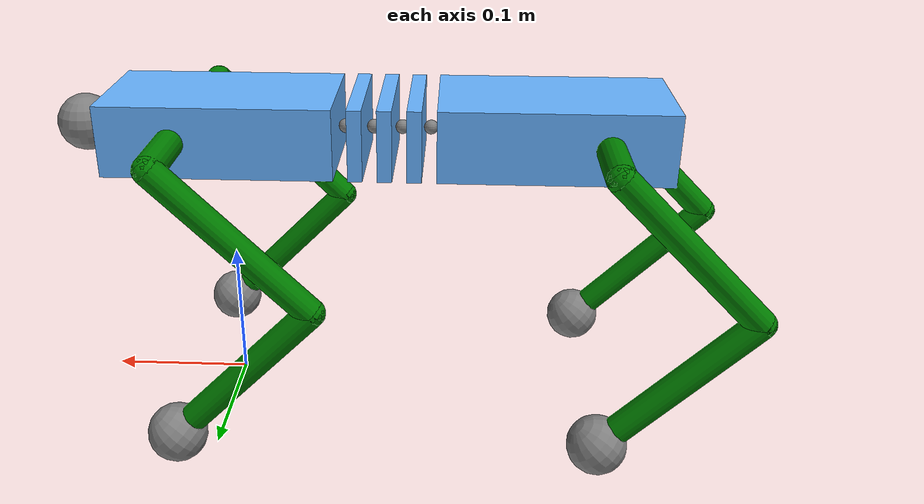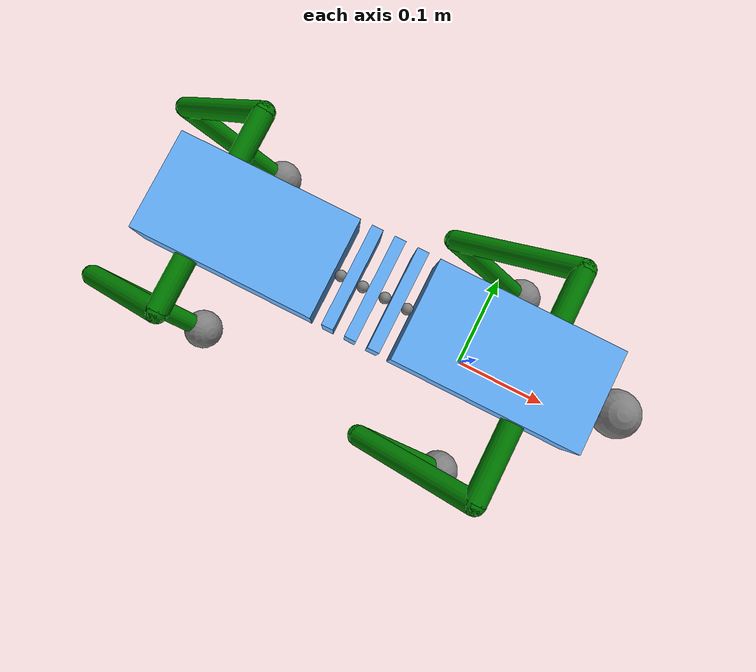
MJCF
<mujoco>

    <default>

        <default class="group1">
            <geom group="1" />
            <joint group="1" />

            <default class="limbs">

                <default class="Spine">
                    <geom mass="0.001" type="box" size="0.005 0.044 0.025" rgba="0.4 0.7 1.0 1" group="1"/>
                </default>

                <default class="SpineConnector">
                    <geom type="sphere" size="0.005" group="1"/>
                </default>

                <default class="Limb">
                    <geom mass="0.3" type="box" size="0.08 0.044 0.025" rgba="0.4 0.7 1.0 1" group="1"/>
                </default>

                <default class="AbductionGeom">
                    <geom type="capsule" mass="0.055" size="0.01" rgba="0.0 0.5 0.0 1" group="1"/>
                </default>

                <default class="UpLeg">
                    <geom type="capsule" mass="0.055" size="0.01" fromto="0 0 0 -0.14 0 0" rgba="0.0 0.5 0.0 1" group="1"/>
                </default>

                <default class="DownLeg">
                    <geom type="capsule" mass="0.055" size="0.01" fromto="0 0 0 0.14 0 0" rgba="0.0 0.5 0.0 1" group="1"/>
                </default>

                <default class="Foot">
                    <geom type="sphere" mass="0" size="0.02" rgba="1.0 1.0 0.1 1" friction="2 0.02 0.01" group="1"/>
                </default>

            </default>

            <default class="joints">

                <default class="spine-z-joint">
                    <joint limited="true" range="-12 12" type="hinge"
                        stiffness="0" damping="0.1" armature="0.0065"
                        />
                </default>

                <default class="spine-y-joint">
                    <joint limited="true" range="-12 12" type="hinge"
                        axis="0 1 0" stiffness="0" damping="0.1" armature="0.0065" />
                </default>

                <default class="abduction_joint">
                    <joint limited="true" range="-20 30" type="hinge"
                        axis="1 0 0" stiffness="0" damping="0.1" armature="0.0065" />
                </default>

                <default class="hip_joint">
                    <joint limited="true" range="-40 40" type="hinge"
                        axis="0 1 0" stiffness="0" damping="0.1" armature="0.0065" />
                </default>

                <default class="knee_joint">
                    <joint limited="true" range="-30 30" type="hinge"
                        axis="0 1 0" stiffness="0" damping="0.1" armature="0.0065" />
                </default>

            </default>
        </default>

    </default>

    <worldbody>
        <body name="main_body" pos="0 0 0.2" euler="0 0 0" childclass="group1">

            <joint name="rail" type="free"/>

            <geom name="Frontlimb" class="Limb"/>

            <!-- Move imu -->

            <site name="head" pos="0.1 0 0" size="0.02"/>

            <body name="FL" pos="0.03 0.044 0">
                <body name="LegFrame_FL">
                    <joint name="AbductionJoint_FL" class="abduction_joint"/>
                    <geom name="Abduction_FL" class="AbductionGeom" fromto="0 0 0 0 0.05 0"/>

                    <body name="UpLegFrame_FL" pos="0 0.05 0" euler="0 -45 0">
                        <joint name="HipJoint_FL" class="hip_joint" />
                        <geom name="UpLeg_FL" class="UpLeg"/>

                        <body name="DownLegFrame_FL" pos="-0.14 0 0" euler="0 90 0">
                            <joint name="KneeJoint_FL" class="knee_joint" />
                            <geom name="DownLeg_FL" class="DownLeg"/>

                            <body name="FootFrame_FL" pos="0.14 0 0">
                                <geom name="Foot_FL" class="Foot"/>
                                <site name="Foot_FL_contact" size="0.021"/>
                            </body>
                        </body>
                    </body>
                </body>
            </body>

            <body name="FR" pos="0.03 -0.044 0">
                <body name="LegFrame_FR">
                    <joint name="AbductionJoint_FR" class="abduction_joint"/>
                    <geom name="Abduction_FR" class="AbductionGeom" fromto="0 0 0 0 -0.07 0"/>

                    <body name="UpLegFrame_FR" pos="0 -0.07 0" euler="0 -45 0">
                        <joint name="HipJoint_FR" class="hip_joint" />
                        <geom name="UpLeg_FR" class="UpLeg"/>

                        <body name="DownLegFrame_FR" pos="-0.14 0 0" euler="0 90 0">
                            <joint name="KneeJoint_FR" class="knee_joint"/>
                            <geom name="DownLeg_FR" class="DownLeg"/>

                            <body name="FootFrame_FR" pos="0.14 0 0">
                                <geom name="Foot_FR" class="Foot"/>
                                <site name="Foot_FR_contact" size="0.021"/>
                            </body>
                        </body>
                    </body>
                </body>
            </body>

            <body name="T1" pos="-0.085 0 0">

                <joint name="Spine1-Y" class="spine-y-joint"/>
                <joint name="Spine1-Z" class="spine-z-joint"/>

                <geom name="T1-Connector" class="SpineConnector"/>
                <geom name="T1" class="Spine" pos="-0.01 0 0"/>

                <body name="T2" pos="-0.02 0 0">

                    <joint name="Spine2-Y" class="spine-y-joint"/>
                    <joint name="Spine2-Z" class="spine-z-joint"/>

                    <geom name="T2-Connector" class="SpineConnector"/>
                    <geom name="T2" class="Spine" pos="-0.01 0 0"/>

                    <body name="COM" pos="-0.01 0 0"></body>

                    <body name="T3" pos="-0.02 0 0">

                        <joint name="Spine3-Y" class="spine-y-joint"/>
                        <joint name="Spine3-Z" class="spine-z-joint"/>

                        <geom name="T3-Connector" class="SpineConnector"/>
                        <geom name="T3" class="Spine" pos="-0.01 0 0"/>

                        <body name="Hindlimb" pos="-0.02 0 0">

                            <joint name="Hip-Y" class="spine-y-joint"/>
                            <joint name="Hip-Z" class="spine-z-joint"/>

                            <geom name="Hip-Connector" class="SpineConnector"/>
                            <geom name="HindLimb" class="Limb" pos="-0.085 0 0"/>

                            <body name="RL" pos="-0.12 0.044 0">
                                <body name="LegFrame_RL">
                                    <joint name="AbductionJoint_RL" class="abduction_joint"/>
                                    <geom name="Abduction_RL" class="AbductionGeom" fromto="0 0 0 0 0.05 0"/>

                                    <body name="UpLegFrame_RL" pos="0 0.05 0" euler="0 -45 0">
                                        <joint name="HipJoint_RL" class="hip_joint" />
                                        <geom name="UpLeg_RL" class="UpLeg"/>

                                        <body name="DownLegFrame_RL" pos="-0.14 0 0" euler="0 90 0">
                                            <joint name="KneeJoint_RL" class="knee_joint" />
                                            <geom name="DownLeg_RL" class="DownLeg"/>

                                            <body name="FootFrame_RL" pos="0.14 0 0">
                                                <geom name="Foot_RL" class="Foot"/>
                                                <site name="Foot_RL_contact" size="0.021"/>
                                            </body>
                                        </body>
                                    </body>
                                </body>
                            </body>

                            <body name="RR" pos="-0.12 -0.044 0">
                                <body name="LegFrame_RR">
                                    <joint name="AbductionJoint_RR" class="abduction_joint"/>
                                    <geom name="Abduction_RR" class="AbductionGeom" fromto="0 0 0 0 -0.05 0"/>

                                    <body name="UpLegFrame_RR" pos="0 -0.05 0" euler="0 -45 0">
                                        <joint name="HipJoint_RR" class="hip_joint" />
                                        <geom name="UpLeg_RR" class="UpLeg"/>

                                        <body name="DownLegFrame_RR" pos="-0.14 0 0" euler="0 90 0">
                                            <joint name="KneeJoint_RR" class="knee_joint" />
                                            <geom name="DownLeg_RR" class="DownLeg"/>

                                            <body name="FootFrame_RR" pos="0.14 0 0">
                                                <geom name="Foot_RR" class="Foot"/>
                                                <site name="Foot_RR_contact" size="0.021"/>
                                            </body>
                                        </body>
                                    </body>
                                </body>
                            </body>

                        </body>

                    </body>
                </body>
            </body>

        </body>

    </worldbody>

</mujoco>
